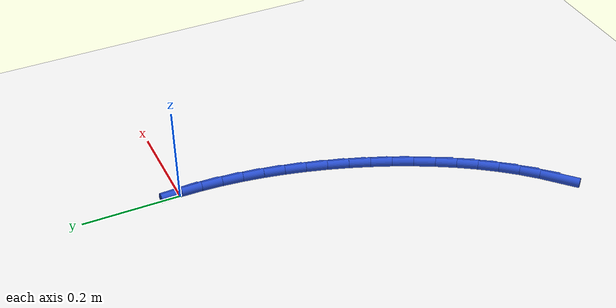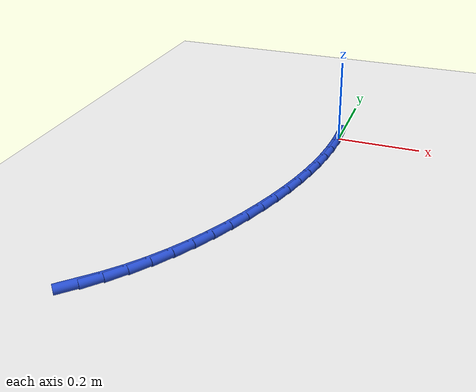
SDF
<sdf version="1.6">
 <world name="default">
  <model name="ground_plane">
   <static>1</static>
   <link name="link">
    <collision name="collision">
     <geometry><plane><normal>0 0 1</normal><size>100 100</size></plane></geometry>
     <surface><friction><ode><mu>100</mu><mu2>50</mu2></ode></friction></surface>
    </collision>
    <visual name="visual">
     <cast_shadows>0</cast_shadows>
     <geometry><plane><normal>0 0 1</normal><size>100 100</size></plane></geometry>
     <material>
      <script><uri>file://media/materials/scripts/gazebo.material</uri><name>Gazebo/WhiteGlow</name></script>
     </material>
    </visual>
   </link>
  </model>
  <model name="line">
   <link name="link_0">
    <pose>1.734723475976807e-17 -6.938893903907228e-17 0.01 0 1.57 -1.537088208217915</pose>
    <collision name="collision">
     <geometry><cylinder><radius>0.01</radius><length>0.08</length></cylinder></geometry>
    </collision>
    <visual name="visual">
     <material>
      <script><name>Gazebo/Blue</name><uri>file://media/materials/scripts/gazebo.material</uri></script>
     </material>
     <geometry><cylinder><radius>0.01</radius><length>0.08</length></cylinder></geometry>
    </visual>
   </link>
   <link name="link_142">
    <pose>-0.28932686075241854 -0.7040470918491158 0.01 0 1.57 0.750912166916657</pose>
    <collision name="collision">
     <geometry><cylinder><radius>0.01</radius><length>0.08</length></cylinder></geometry>
    </collision>
    <visual name="visual">
     <material>
      <script><name>Gazebo/Blue</name><uri>file://media/materials/scripts/gazebo.material</uri></script>
     </material>
     <geometry><cylinder><radius>0.01</radius><length>0.08</length></cylinder></geometry>
    </visual>
   </link>
   <link name="link_143">
    <pose>-0.25875671626766 -0.6755159234052796 0.01 0 1.57 0.821398921720262</pose>
    <collision name="collision">
     <geometry><cylinder><radius>0.01</radius><length>0.08</length></cylinder></geometry>
    </collision>
    <visual name="visual">
     <material>
      <script><name>Gazebo/Blue</name><uri>file://media/materials/scripts/gazebo.material</uri></script>
     </material>
     <geometry><cylinder><radius>0.01</radius><length>0.08</length></cylinder></geometry>
    </visual>
   </link>
   <link name="link_144">
    <pose>-0.2299171282490768 -0.644521328339309 0.01 0 1.57 0.8857557451497339</pose>
    <collision name="collision">
     <geometry><cylinder><radius>0.01</radius><length>0.08</length></cylinder></geometry>
    </collision>
    <visual name="visual">
     <material>
      <script><name>Gazebo/Blue</name><uri>file://media/materials/scripts/gazebo.material</uri></script>
     </material>
     <geometry><cylinder><radius>0.01</radius><length>0.08</length></cylinder></geometry>
    </visual>
   </link>
   <link name="link_145">
    <pose>-0.20279259291661855 -0.6113224773440906 0.01 0 1.57 0.9445028847048765</pose>
    <collision name="collision">
     <geometry><cylinder><radius>0.01</radius><length>0.08</length></cylinder></geometry>
    </collision>
    <visual name="visual">
     <material>
      <script><name>Gazebo/Blue</name><uri>file://media/materials/scripts/gazebo.material</uri></script>
     </material>
     <geometry><cylinder><radius>0.01</radius><length>0.08</length></cylinder></geometry>
    </visual>
   </link>
   <link name="link_146">
    <pose>-0.1773676064902346 -0.576178541112511 0.01 0 1.57 0.9982185649713916</pose>
    <collision name="collision">
     <geometry><cylinder><radius>0.01</radius><length>0.08</length></cylinder></geometry>
    </collision>
    <visual name="visual">
     <material>
      <script><name>Gazebo/Blue</name><uri>file://media/materials/scripts/gazebo.material</uri></script>
     </material>
     <geometry><cylinder><radius>0.01</radius><length>0.08</length></cylinder></geometry>
    </visual>
   </link>
   <link name="link_147">
    <pose>-0.15362666518987544 -0.5393486903374582 0.01 0 1.57 1.0474927516053811</pose>
    <collision name="collision">
     <geometry><cylinder><radius>0.01</radius><length>0.08</length></cylinder></geometry>
    </collision>
    <visual name="visual">
     <material>
      <script><name>Gazebo/Blue</name><uri>file://media/materials/scripts/gazebo.material</uri></script>
     </material>
     <geometry><cylinder><radius>0.01</radius><length>0.08</length></cylinder></geometry>
    </visual>
   </link>
   <link name="link_148">
    <pose>-0.13155426523549038 -0.5010920957118187 0.01 0 1.57 1.0928997597986885</pose>
    <collision name="collision">
     <geometry><cylinder><radius>0.01</radius><length>0.08</length></cylinder></geometry>
    </collision>
    <visual name="visual">
     <material>
      <script><name>Gazebo/Blue</name><uri>file://media/materials/scripts/gazebo.material</uri></script>
     </material>
     <geometry><cylinder><radius>0.01</radius><length>0.08</length></cylinder></geometry>
    </visual>
   </link>
   <link name="link_149">
    <pose>-0.11113490284702897 -0.461667927928479 0.01 0 1.57 1.134984637558207</pose>
    <collision name="collision">
     <geometry><cylinder><radius>0.01</radius><length>0.08</length></cylinder></geometry>
    </collision>
    <visual name="visual">
     <material>
      <script><name>Gazebo/Blue</name><uri>file://media/materials/scripts/gazebo.material</uri></script>
     </material>
     <geometry><cylinder><radius>0.01</radius><length>0.08</length></cylinder></geometry>
    </visual>
   </link>
   <link name="link_150">
    <pose>-0.092353074244441 -0.4213353576803262 0.01 0 1.57 1.1742591032982268</pose>
    <collision name="collision">
     <geometry><cylinder><radius>0.01</radius><length>0.08</length></cylinder></geometry>
    </collision>
    <visual name="visual">
     <material>
      <script><name>Gazebo/Blue</name><uri>file://media/materials/scripts/gazebo.material</uri></script>
     </material>
     <geometry><cylinder><radius>0.01</radius><length>0.08</length></cylinder></geometry>
    </visual>
   </link>
   <link name="link_151">
    <pose>-0.0751932777915496 -0.3803535495619404 0.01 0 1.57 1.2118157794246396</pose>
    <collision name="collision">
     <geometry><cylinder><radius>0.01</radius><length>0.08</length></cylinder></geometry>
    </collision>
    <visual name="visual">
     <material>
      <script><name>Gazebo/Blue</name><uri>file://media/materials/scripts/gazebo.material</uri></script>
     </material>
     <geometry><cylinder><radius>0.01</radius><length>0.08</length></cylinder></geometry>
    </visual>
   </link>
   <link name="link_152">
    <pose>-0.059653993606751804 -0.33894189669635455 0.01 0 1.57 1.2500322236690908</pose>
    <collision name="collision">
     <geometry><cylinder><radius>0.01</radius><length>0.08</length></cylinder></geometry>
    </collision>
    <visual name="visual">
     <material>
      <script><name>Gazebo/Blue</name><uri>file://media/materials/scripts/gazebo.material</uri></script>
     </material>
     <geometry><cylinder><radius>0.01</radius><length>0.08</length></cylinder></geometry>
    </visual>
   </link>
   <link name="link_153">
    <pose>-0.04578093029671603 -0.2971854495196444 0.01 0 1.57 1.289454919380793</pose>
    <collision name="collision">
     <geometry><cylinder><radius>0.01</radius><length>0.08</length></cylinder></geometry>
    </collision>
    <visual name="visual">
     <material>
      <script><name>Gazebo/Blue</name><uri>file://media/materials/scripts/gazebo.material</uri></script>
     </material>
     <geometry><cylinder><radius>0.01</radius><length>0.08</length></cylinder></geometry>
    </visual>
   </link>
   <link name="link_154">
    <pose>-0.03362975843739699 -0.2551409213821528 0.01 0 1.57 1.3301717070249206</pose>
    <collision name="collision">
     <geometry><cylinder><radius>0.01</radius><length>0.08</length></cylinder></geometry>
    </collision>
    <visual name="visual">
     <material>
      <script><name>Gazebo/Blue</name><uri>file://media/materials/scripts/gazebo.material</uri></script>
     </material>
     <geometry><cylinder><radius>0.01</radius><length>0.08</length></cylinder></geometry>
    </visual>
   </link>
   <link name="link_155">
    <pose>-0.023256148604749453 -0.21286502563422274 0.01 0 1.57 1.3722624342594478</pose>
    <collision name="collision">
     <geometry><cylinder><radius>0.01</radius><length>0.08</length></cylinder></geometry>
    </collision>
    <visual name="visual">
     <material>
      <script><name>Gazebo/Blue</name><uri>file://media/materials/scripts/gazebo.material</uri></script>
     </material>
     <geometry><cylinder><radius>0.01</radius><length>0.08</length></cylinder></geometry>
    </visual>
   </link>
   <link name="link_156">
    <pose>-0.014715771374728012 -0.1704144756261965 0.01 0 1.57 1.4157962059893687</pose>
    <collision name="collision">
     <geometry><cylinder><radius>0.01</radius><length>0.08</length></cylinder></geometry>
    </collision>
    <visual name="visual">
     <material>
      <script><name>Gazebo/Blue</name><uri>file://media/materials/scripts/gazebo.material</uri></script>
     </material>
     <geometry><cylinder><radius>0.01</radius><length>0.08</length></cylinder></geometry>
    </visual>
   </link>
   <link name="link_157">
    <pose>-0.008064297323287704 -0.12784598470841863 0.01 0 1.57 1.4608281721138254</pose>
    <collision name="collision">
     <geometry><cylinder><radius>0.01</radius><length>0.08</length></cylinder></geometry>
    </collision>
    <visual name="visual">
     <material>
      <script><name>Gazebo/Blue</name><uri>file://media/materials/scripts/gazebo.material</uri></script>
     </material>
     <geometry><cylinder><radius>0.01</radius><length>0.08</length></cylinder></geometry>
    </visual>
   </link>
   <link name="link_158">
    <pose>-0.0033573970263831117 -0.0852162662312313 0.01 0 1.57 1.5073959029243464</pose>
    <collision name="collision">
     <geometry><cylinder><radius>0.01</radius><length>0.08</length></cylinder></geometry>
    </collision>
    <visual name="visual">
     <material>
      <script><name>Gazebo/Blue</name><uri>file://media/materials/scripts/gazebo.material</uri></script>
     </material>
     <geometry><cylinder><radius>0.01</radius><length>0.08</length></cylinder></geometry>
    </visual>
   </link>
   <link name="link_159">
    <pose>-0.000650741059968961 -0.042582033544977506 0.01 0 1.57 1.555515459382058</pose>
    <collision name="collision">
     <geometry><cylinder><radius>0.01</radius><length>0.08</length></cylinder></geometry>
    </collision>
    <visual name="visual">
     <material>
      <script><name>Gazebo/Blue</name><uri>file://media/materials/scripts/gazebo.material</uri></script>
     </material>
     <geometry><cylinder><radius>0.01</radius><length>0.08</length></cylinder></geometry>
    </visual>
   </link>
   <link name="link_160">
    <pose>1.3877787807814457e-17 -2.7755575615628914e-16 0.01 0 1.57 -1.5364153173012656</pose>
    <collision name="collision">
     <geometry><cylinder><radius>0.01</radius><length>0.08</length></cylinder></geometry>
    </collision>
    <visual name="visual">
     <material>
      <script><name>Gazebo/Blue</name><uri>file://media/materials/scripts/gazebo.material</uri></script>
     </material>
     <geometry><cylinder><radius>0.01</radius><length>0.08</length></cylinder></geometry>
    </visual>
   </link>
  </model>
 </world>
</sdf>
